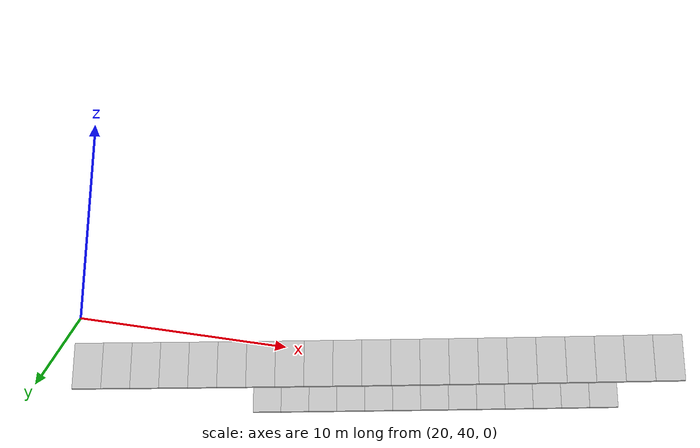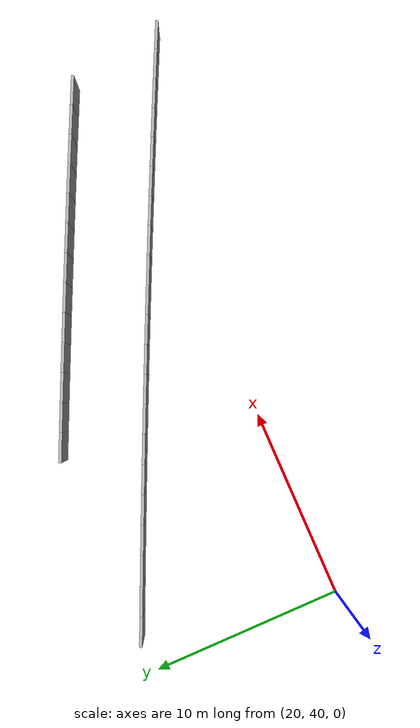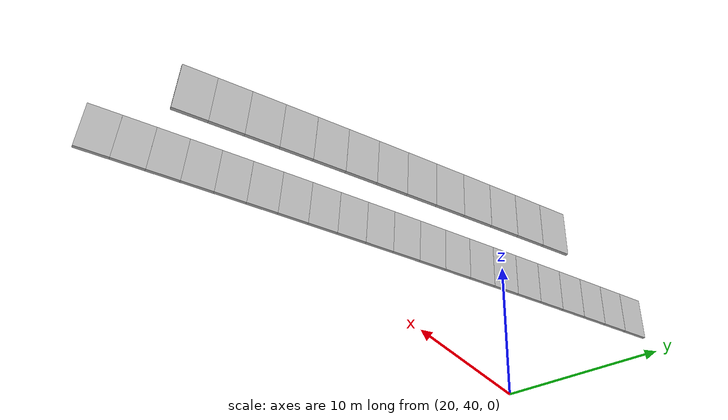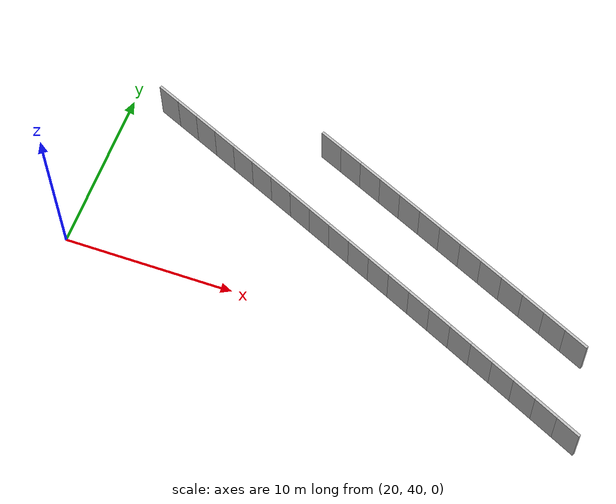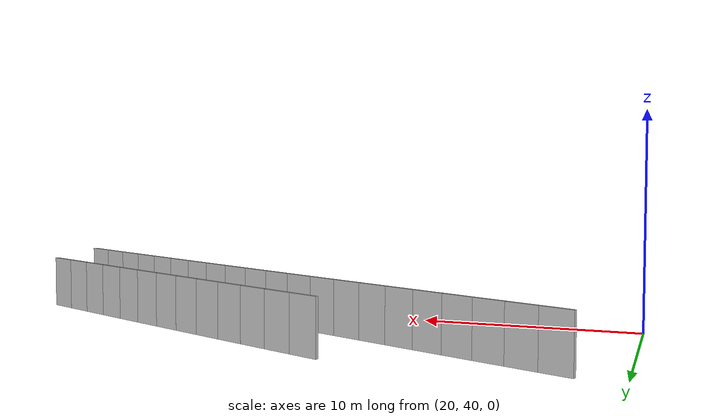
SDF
<?xml version="1.0" ?>
<sdf version="1.6">
  <model name="sps_3444">
    <pose frame="">0 0 0 0 -0 0</pose>
    <static>1</static>
    <self_collide>0</self_collide>
    <allow_auto_disable>0</allow_auto_disable>
    <link name="Wall10630">
      <kinematic>0</kinematic>
      <gravity>1</gravity>
      <self_collide>0</self_collide>
      <collision name="collision">
        <geometry>
          <box>
            <size>1.49646 0.15 2.5</size>
          </box>
        </geometry>
        <pose frame="">0 0 0 0 -0 0</pose>
      </collision>
      <visual name="visual">
        <geometry>
          <box>
            <size>1.49646 0.15 2.5</size>
          </box>
        </geometry>
        <pose frame="">0 0 0 0 -0 0</pose>
        <cast_shadows>1</cast_shadows>
        <transparency>0.0</transparency>
      </visual>
      <pose frame="">49.7427 37.1534 1.25 0 -0 2.6927</pose>
    </link>
    <link name="Wall10631">
      <kinematic>0</kinematic>
      <gravity>1</gravity>
      <self_collide>0</self_collide>
      <collision name="collision">
        <geometry>
          <box>
            <size>1.49647 0.15 2.5</size>
          </box>
        </geometry>
        <pose frame="">0 0 0 0 -0 0</pose>
      </collision>
      <visual name="visual">
        <geometry>
          <box>
            <size>1.49647 0.15 2.5</size>
          </box>
        </geometry>
        <pose frame="">0 0 0 0 -0 0</pose>
        <cast_shadows>1</cast_shadows>
        <transparency>0.0</transparency>
      </visual>
      <pose frame="">48.394 37.8018 1.25 0 -0 2.6942</pose>
    </link>
    <link name="Wall10632">
      <kinematic>0</kinematic>
      <gravity>1</gravity>
      <self_collide>0</self_collide>
      <collision name="collision">
        <geometry>
          <box>
            <size>1.4967 0.15 2.5</size>
          </box>
        </geometry>
        <pose frame="">0 0 0 0 -0 0</pose>
      </collision>
      <visual name="visual">
        <geometry>
          <box>
            <size>1.4967 0.15 2.5</size>
          </box>
        </geometry>
        <pose frame="">0 0 0 0 -0 0</pose>
        <cast_shadows>1</cast_shadows>
        <transparency>0.0</transparency>
      </visual>
      <pose frame="">47.0442 38.4482 1.25 0 -0 2.69576</pose>
    </link>
    <link name="Wall10633">
      <kinematic>0</kinematic>
      <gravity>1</gravity>
      <self_collide>0</self_collide>
      <collision name="collision">
        <geometry>
          <box>
            <size>1.49639 0.15 2.5</size>
          </box>
        </geometry>
        <pose frame="">0 0 0 0 -0 0</pose>
      </collision>
      <visual name="visual">
        <geometry>
          <box>
            <size>1.49639 0.15 2.5</size>
          </box>
        </geometry>
        <pose frame="">0 0 0 0 -0 0</pose>
        <cast_shadows>1</cast_shadows>
        <transparency>0.0</transparency>
      </visual>
      <pose frame="">45.6934 39.0924 1.25 0 -0 2.69743</pose>
    </link>
    <link name="Wall10634">
      <kinematic>0</kinematic>
      <gravity>1</gravity>
      <self_collide>0</self_collide>
      <collision name="collision">
        <geometry>
          <box>
            <size>1.49663 0.15 2.5</size>
          </box>
        </geometry>
        <pose frame="">0 0 0 0 -0 0</pose>
      </collision>
      <visual name="visual">
        <geometry>
          <box>
            <size>1.49663 0.15 2.5</size>
          </box>
        </geometry>
        <pose frame="">0 0 0 0 -0 0</pose>
        <cast_shadows>1</cast_shadows>
        <transparency>0.0</transparency>
      </visual>
      <pose frame="">44.3416 39.7344 1.25 0 -0 2.69899</pose>
    </link>
    <link name="Wall10635">
      <kinematic>0</kinematic>
      <gravity>1</gravity>
      <self_collide>0</self_collide>
      <collision name="collision">
        <geometry>
          <box>
            <size>1.49635 0.15 2.5</size>
          </box>
        </geometry>
        <pose frame="">0 0 0 0 -0 0</pose>
      </collision>
      <visual name="visual">
        <geometry>
          <box>
            <size>1.49635 0.15 2.5</size>
          </box>
        </geometry>
        <pose frame="">0 0 0 0 -0 0</pose>
        <cast_shadows>1</cast_shadows>
        <transparency>0.0</transparency>
      </visual>
      <pose frame="">42.9889 40.3743 1.25 0 -0 2.70053</pose>
    </link>
    <link name="Wall10636">
      <kinematic>0</kinematic>
      <gravity>1</gravity>
      <self_collide>0</self_collide>
      <collision name="collision">
        <geometry>
          <box>
            <size>1.49651 0.15 2.5</size>
          </box>
        </geometry>
        <pose frame="">0 0 0 0 -0 0</pose>
      </collision>
      <visual name="visual">
        <geometry>
          <box>
            <size>1.49651 0.15 2.5</size>
          </box>
        </geometry>
        <pose frame="">0 0 0 0 -0 0</pose>
        <cast_shadows>1</cast_shadows>
        <transparency>0.0</transparency>
      </visual>
      <pose frame="">41.6352 41.0121 1.25 0 -0 2.70202</pose>
    </link>
    <link name="Wall10637">
      <kinematic>0</kinematic>
      <gravity>1</gravity>
      <self_collide>0</self_collide>
      <collision name="collision">
        <geometry>
          <box>
            <size>1.49647 0.15 2.5</size>
          </box>
        </geometry>
        <pose frame="">0 0 0 0 -0 0</pose>
      </collision>
      <visual name="visual">
        <geometry>
          <box>
            <size>1.49647 0.15 2.5</size>
          </box>
        </geometry>
        <pose frame="">0 0 0 0 -0 0</pose>
        <cast_shadows>1</cast_shadows>
        <transparency>0.0</transparency>
      </visual>
      <pose frame="">40.2804 41.6477 1.25 0 -0 2.70381</pose>
    </link>
    <link name="Wall10638">
      <kinematic>0</kinematic>
      <gravity>1</gravity>
      <self_collide>0</self_collide>
      <collision name="collision">
        <geometry>
          <box>
            <size>1.49669 0.15 2.5</size>
          </box>
        </geometry>
        <pose frame="">0 0 0 0 -0 0</pose>
      </collision>
      <visual name="visual">
        <geometry>
          <box>
            <size>1.49669 0.15 2.5</size>
          </box>
        </geometry>
        <pose frame="">0 0 0 0 -0 0</pose>
        <cast_shadows>1</cast_shadows>
        <transparency>0.0</transparency>
      </visual>
      <pose frame="">38.9245 42.2812 1.25 0 -0 2.70523</pose>
    </link>
    <link name="Wall10639">
      <kinematic>0</kinematic>
      <gravity>1</gravity>
      <self_collide>0</self_collide>
      <collision name="collision">
        <geometry>
          <box>
            <size>1.49635 0.15 2.5</size>
          </box>
        </geometry>
        <pose frame="">0 0 0 0 -0 0</pose>
      </collision>
      <visual name="visual">
        <geometry>
          <box>
            <size>1.49635 0.15 2.5</size>
          </box>
        </geometry>
        <pose frame="">0 0 0 0 -0 0</pose>
        <cast_shadows>1</cast_shadows>
        <transparency>0.0</transparency>
      </visual>
      <pose frame="">37.5676 42.9126 1.25 0 -0 2.70688</pose>
    </link>
    <link name="Wall10640">
      <kinematic>0</kinematic>
      <gravity>1</gravity>
      <self_collide>0</self_collide>
      <collision name="collision">
        <geometry>
          <box>
            <size>1.49664 0.15 2.5</size>
          </box>
        </geometry>
        <pose frame="">0 0 0 0 -0 0</pose>
      </collision>
      <visual name="visual">
        <geometry>
          <box>
            <size>1.49664 0.15 2.5</size>
          </box>
        </geometry>
        <pose frame="">0 0 0 0 -0 0</pose>
        <cast_shadows>1</cast_shadows>
        <transparency>0.0</transparency>
      </visual>
      <pose frame="">36.2099 43.5418 1.25 0 -0 2.70841</pose>
    </link>
    <link name="Wall10641">
      <kinematic>0</kinematic>
      <gravity>1</gravity>
      <self_collide>0</self_collide>
      <collision name="collision">
        <geometry>
          <box>
            <size>1.49663 0.15 2.5</size>
          </box>
        </geometry>
        <pose frame="">0 0 0 0 -0 0</pose>
      </collision>
      <visual name="visual">
        <geometry>
          <box>
            <size>1.49663 0.15 2.5</size>
          </box>
        </geometry>
        <pose frame="">0 0 0 0 -0 0</pose>
        <cast_shadows>1</cast_shadows>
        <transparency>0.0</transparency>
      </visual>
      <pose frame="">34.8509 44.1689 1.25 0 -0 2.71007</pose>
    </link>
    <link name="Wall10642">
      <kinematic>0</kinematic>
      <gravity>1</gravity>
      <self_collide>0</self_collide>
      <collision name="collision">
        <geometry>
          <box>
            <size>1.49638 0.15 2.5</size>
          </box>
        </geometry>
        <pose frame="">0 0 0 0 -0 0</pose>
      </collision>
      <visual name="visual">
        <geometry>
          <box>
            <size>1.49638 0.15 2.5</size>
          </box>
        </geometry>
        <pose frame="">0 0 0 0 -0 0</pose>
        <cast_shadows>1</cast_shadows>
        <transparency>0.0</transparency>
      </visual>
      <pose frame="">33.4911 44.7938 1.25 0 -0 2.71161</pose>
    </link>
    <link name="Wall10643">
      <kinematic>0</kinematic>
      <gravity>1</gravity>
      <self_collide>0</self_collide>
      <collision name="collision">
        <geometry>
          <box>
            <size>1.4966 0.15 2.5</size>
          </box>
        </geometry>
        <pose frame="">0 0 0 0 -0 0</pose>
      </collision>
      <visual name="visual">
        <geometry>
          <box>
            <size>1.4966 0.15 2.5</size>
          </box>
        </geometry>
        <pose frame="">0 0 0 0 -0 0</pose>
        <cast_shadows>1</cast_shadows>
        <transparency>0.0</transparency>
      </visual>
      <pose frame="">32.1304 45.4165 1.25 0 -0 2.71324</pose>
    </link>
    <link name="Wall10644">
      <kinematic>0</kinematic>
      <gravity>1</gravity>
      <self_collide>0</self_collide>
      <collision name="collision">
        <geometry>
          <box>
            <size>1.49639 0.15 2.5</size>
          </box>
        </geometry>
        <pose frame="">0 0 0 0 -0 0</pose>
      </collision>
      <visual name="visual">
        <geometry>
          <box>
            <size>1.49639 0.15 2.5</size>
          </box>
        </geometry>
        <pose frame="">0 0 0 0 -0 0</pose>
        <cast_shadows>1</cast_shadows>
        <transparency>0.0</transparency>
      </visual>
      <pose frame="">30.7686 46.037 1.25 0 -0 2.71484</pose>
    </link>
    <link name="Wall10645">
      <kinematic>0</kinematic>
      <gravity>1</gravity>
      <self_collide>0</self_collide>
      <collision name="collision">
        <geometry>
          <box>
            <size>1.49643 0.15 2.5</size>
          </box>
        </geometry>
        <pose frame="">0 0 0 0 -0 0</pose>
      </collision>
      <visual name="visual">
        <geometry>
          <box>
            <size>1.49643 0.15 2.5</size>
          </box>
        </geometry>
        <pose frame="">0 0 0 0 -0 0</pose>
        <cast_shadows>1</cast_shadows>
        <transparency>0.0</transparency>
      </visual>
      <pose frame="">29.4059 46.6553 1.25 0 -0 2.71646</pose>
    </link>
    <link name="Wall10646">
      <kinematic>0</kinematic>
      <gravity>1</gravity>
      <self_collide>0</self_collide>
      <collision name="collision">
        <geometry>
          <box>
            <size>1.49651 0.15 2.5</size>
          </box>
        </geometry>
        <pose frame="">0 0 0 0 -0 0</pose>
      </collision>
      <visual name="visual">
        <geometry>
          <box>
            <size>1.49651 0.15 2.5</size>
          </box>
        </geometry>
        <pose frame="">0 0 0 0 -0 0</pose>
        <cast_shadows>1</cast_shadows>
        <transparency>0.0</transparency>
      </visual>
      <pose frame="">28.0422 47.2715 1.25 0 -0 2.71792</pose>
    </link>
    <link name="Wall10647">
      <kinematic>0</kinematic>
      <gravity>1</gravity>
      <self_collide>0</self_collide>
      <collision name="collision">
        <geometry>
          <box>
            <size>1.49653 0.15 2.5</size>
          </box>
        </geometry>
        <pose frame="">0 0 0 0 -0 0</pose>
      </collision>
      <visual name="visual">
        <geometry>
          <box>
            <size>1.49653 0.15 2.5</size>
          </box>
        </geometry>
        <pose frame="">0 0 0 0 -0 0</pose>
        <cast_shadows>1</cast_shadows>
        <transparency>0.0</transparency>
      </visual>
      <pose frame="">26.6775 47.8856 1.25 0 -0 2.71958</pose>
    </link>
    <link name="Wall10648">
      <kinematic>0</kinematic>
      <gravity>1</gravity>
      <self_collide>0</self_collide>
      <collision name="collision">
        <geometry>
          <box>
            <size>1.49647 0.15 2.5</size>
          </box>
        </geometry>
        <pose frame="">0 0 0 0 -0 0</pose>
      </collision>
      <visual name="visual">
        <geometry>
          <box>
            <size>1.49647 0.15 2.5</size>
          </box>
        </geometry>
        <pose frame="">0 0 0 0 -0 0</pose>
        <cast_shadows>1</cast_shadows>
        <transparency>0.0</transparency>
      </visual>
      <pose frame="">25.3118 48.4975 1.25 0 -0 2.72117</pose>
    </link>
    <link name="Wall10649">
      <kinematic>0</kinematic>
      <gravity>1</gravity>
      <self_collide>0</self_collide>
      <collision name="collision">
        <geometry>
          <box>
            <size>1.4966 0.15 2.5</size>
          </box>
        </geometry>
        <pose frame="">0 0 0 0 -0 0</pose>
      </collision>
      <visual name="visual">
        <geometry>
          <box>
            <size>1.4966 0.15 2.5</size>
          </box>
        </geometry>
        <pose frame="">0 0 0 0 -0 0</pose>
        <cast_shadows>1</cast_shadows>
        <transparency>0.0</transparency>
      </visual>
      <pose frame="">23.9451 49.1072 1.25 0 -0 2.72277</pose>
    </link>
    <link name="Wall10650">
      <kinematic>0</kinematic>
      <gravity>1</gravity>
      <self_collide>0</self_collide>
      <collision name="collision">
        <geometry>
          <box>
            <size>1.49643 0.15 2.5</size>
          </box>
        </geometry>
        <pose frame="">0 0 0 0 -0 0</pose>
      </collision>
      <visual name="visual">
        <geometry>
          <box>
            <size>1.49643 0.15 2.5</size>
          </box>
        </geometry>
        <pose frame="">0 0 0 0 -0 0</pose>
        <cast_shadows>1</cast_shadows>
        <transparency>0.0</transparency>
      </visual>
      <pose frame="">22.5774 49.7148 1.25 0 -0 2.72424</pose>
    </link>
    <link name="Wall11229">
      <kinematic>0</kinematic>
      <gravity>1</gravity>
      <self_collide>0</self_collide>
      <collision name="collision">
        <geometry>
          <box>
            <size>1.50328 0.15 2.5</size>
          </box>
        </geometry>
        <pose frame="">0 0 0 0 -0 0</pose>
      </collision>
      <visual name="visual">
        <geometry>
          <box>
            <size>1.50328 0.15 2.5</size>
          </box>
        </geometry>
        <pose frame="">0 0 0 0 -0 0</pose>
        <cast_shadows>1</cast_shadows>
        <transparency>0.0</transparency>
      </visual>
      <pose frame="">48.8291 42.1839 1.25 0 -0 2.69592</pose>
    </link>
    <link name="Wall11230">
      <kinematic>0</kinematic>
      <gravity>1</gravity>
      <self_collide>0</self_collide>
      <collision name="collision">
        <geometry>
          <box>
            <size>1.50308 0.15 2.5</size>
          </box>
        </geometry>
        <pose frame="">0 0 0 0 -0 0</pose>
      </collision>
      <visual name="visual">
        <geometry>
          <box>
            <size>1.50308 0.15 2.5</size>
          </box>
        </geometry>
        <pose frame="">0 0 0 0 -0 0</pose>
        <cast_shadows>1</cast_shadows>
        <transparency>0.0</transparency>
      </visual>
      <pose frame="">47.4723 42.8309 1.25 0 -0 2.69734</pose>
    </link>
    <link name="Wall11231">
      <kinematic>0</kinematic>
      <gravity>1</gravity>
      <self_collide>0</self_collide>
      <collision name="collision">
        <geometry>
          <box>
            <size>1.50307 0.15 2.5</size>
          </box>
        </geometry>
        <pose frame="">0 0 0 0 -0 0</pose>
      </collision>
      <visual name="visual">
        <geometry>
          <box>
            <size>1.50307 0.15 2.5</size>
          </box>
        </geometry>
        <pose frame="">0 0 0 0 -0 0</pose>
        <cast_shadows>1</cast_shadows>
        <transparency>0.0</transparency>
      </visual>
      <pose frame="">46.1146 43.4758 1.25 0 -0 2.69896</pose>
    </link>
    <link name="Wall11232">
      <kinematic>0</kinematic>
      <gravity>1</gravity>
      <self_collide>0</self_collide>
      <collision name="collision">
        <geometry>
          <box>
            <size>1.50302 0.15 2.5</size>
          </box>
        </geometry>
        <pose frame="">0 0 0 0 -0 0</pose>
      </collision>
      <visual name="visual">
        <geometry>
          <box>
            <size>1.50302 0.15 2.5</size>
          </box>
        </geometry>
        <pose frame="">0 0 0 0 -0 0</pose>
        <cast_shadows>1</cast_shadows>
        <transparency>0.0</transparency>
      </visual>
      <pose frame="">44.7559 44.1185 1.25 0 -0 2.70056</pose>
    </link>
    <link name="Wall11233">
      <kinematic>0</kinematic>
      <gravity>1</gravity>
      <self_collide>0</self_collide>
      <collision name="collision">
        <geometry>
          <box>
            <size>1.50302 0.15 2.5</size>
          </box>
        </geometry>
        <pose frame="">0 0 0 0 -0 0</pose>
      </collision>
      <visual name="visual">
        <geometry>
          <box>
            <size>1.50302 0.15 2.5</size>
          </box>
        </geometry>
        <pose frame="">0 0 0 0 -0 0</pose>
        <cast_shadows>1</cast_shadows>
        <transparency>0.0</transparency>
      </visual>
      <pose frame="">43.3961 44.759 1.25 0 -0 2.70217</pose>
    </link>
    <link name="Wall11234">
      <kinematic>0</kinematic>
      <gravity>1</gravity>
      <self_collide>0</self_collide>
      <collision name="collision">
        <geometry>
          <box>
            <size>1.50313 0.15 2.5</size>
          </box>
        </geometry>
        <pose frame="">0 0 0 0 -0 0</pose>
      </collision>
      <visual name="visual">
        <geometry>
          <box>
            <size>1.50313 0.15 2.5</size>
          </box>
        </geometry>
        <pose frame="">0 0 0 0 -0 0</pose>
        <cast_shadows>1</cast_shadows>
        <transparency>0.0</transparency>
      </visual>
      <pose frame="">42.0353 45.3973 1.25 0 -0 2.70382</pose>
    </link>
    <link name="Wall11235">
      <kinematic>0</kinematic>
      <gravity>1</gravity>
      <self_collide>0</self_collide>
      <collision name="collision">
        <geometry>
          <box>
            <size>1.50308 0.15 2.5</size>
          </box>
        </geometry>
        <pose frame="">0 0 0 0 -0 0</pose>
      </collision>
      <visual name="visual">
        <geometry>
          <box>
            <size>1.50308 0.15 2.5</size>
          </box>
        </geometry>
        <pose frame="">0 0 0 0 -0 0</pose>
        <cast_shadows>1</cast_shadows>
        <transparency>0.0</transparency>
      </visual>
      <pose frame="">40.6735 46.0336 1.25 0 -0 2.70515</pose>
    </link>
    <link name="Wall11236">
      <kinematic>0</kinematic>
      <gravity>1</gravity>
      <self_collide>0</self_collide>
      <collision name="collision">
        <geometry>
          <box>
            <size>1.50301 0.15 2.5</size>
          </box>
        </geometry>
        <pose frame="">0 0 0 0 -0 0</pose>
      </collision>
      <visual name="visual">
        <geometry>
          <box>
            <size>1.50301 0.15 2.5</size>
          </box>
        </geometry>
        <pose frame="">0 0 0 0 -0 0</pose>
        <cast_shadows>1</cast_shadows>
        <transparency>0.0</transparency>
      </visual>
      <pose frame="">39.3108 46.6678 1.25 0 -0 2.70688</pose>
    </link>
    <link name="Wall11237">
      <kinematic>0</kinematic>
      <gravity>1</gravity>
      <self_collide>0</self_collide>
      <collision name="collision">
        <geometry>
          <box>
            <size>1.50314 0.15 2.5</size>
          </box>
        </geometry>
        <pose frame="">0 0 0 0 -0 0</pose>
      </collision>
      <visual name="visual">
        <geometry>
          <box>
            <size>1.50314 0.15 2.5</size>
          </box>
        </geometry>
        <pose frame="">0 0 0 0 -0 0</pose>
        <cast_shadows>1</cast_shadows>
        <transparency>0.0</transparency>
      </visual>
      <pose frame="">37.947 47.2997 1.25 0 -0 2.70853</pose>
    </link>
    <link name="Wall11238">
      <kinematic>0</kinematic>
      <gravity>1</gravity>
      <self_collide>0</self_collide>
      <collision name="collision">
        <geometry>
          <box>
            <size>1.50294 0.15 2.5</size>
          </box>
        </geometry>
        <pose frame="">0 0 0 0 -0 0</pose>
      </collision>
      <visual name="visual">
        <geometry>
          <box>
            <size>1.50294 0.15 2.5</size>
          </box>
        </geometry>
        <pose frame="">0 0 0 0 -0 0</pose>
        <cast_shadows>1</cast_shadows>
        <transparency>0.0</transparency>
      </visual>
      <pose frame="">36.5823 47.9294 1.25 0 -0 2.71008</pose>
    </link>
    <link name="Wall11239">
      <kinematic>0</kinematic>
      <gravity>1</gravity>
      <self_collide>0</self_collide>
      <collision name="collision">
        <geometry>
          <box>
            <size>1.50307 0.15 2.5</size>
          </box>
        </geometry>
        <pose frame="">0 0 0 0 -0 0</pose>
      </collision>
      <visual name="visual">
        <geometry>
          <box>
            <size>1.50307 0.15 2.5</size>
          </box>
        </geometry>
        <pose frame="">0 0 0 0 -0 0</pose>
        <cast_shadows>1</cast_shadows>
        <transparency>0.0</transparency>
      </visual>
      <pose frame="">35.2166 48.557 1.25 0 -0 2.71155</pose>
    </link>
    <link name="Wall11240">
      <kinematic>0</kinematic>
      <gravity>1</gravity>
      <self_collide>0</self_collide>
      <collision name="collision">
        <geometry>
          <box>
            <size>1.50294 0.15 2.5</size>
          </box>
        </geometry>
        <pose frame="">0 0 0 0 -0 0</pose>
      </collision>
      <visual name="visual">
        <geometry>
          <box>
            <size>1.50294 0.15 2.5</size>
          </box>
        </geometry>
        <pose frame="">0 0 0 0 -0 0</pose>
        <cast_shadows>1</cast_shadows>
        <transparency>0.0</transparency>
      </visual>
      <pose frame="">33.8499 49.1824 1.25 0 -0 2.71329</pose>
    </link>
    <link name="Wall11241">
      <kinematic>0</kinematic>
      <gravity>1</gravity>
      <self_collide>0</self_collide>
      <collision name="collision">
        <geometry>
          <box>
            <size>1.50329 0.15 2.5</size>
          </box>
        </geometry>
        <pose frame="">0 0 0 0 -0 0</pose>
      </collision>
      <visual name="visual">
        <geometry>
          <box>
            <size>1.50329 0.15 2.5</size>
          </box>
        </geometry>
        <pose frame="">0 0 0 0 -0 0</pose>
        <cast_shadows>1</cast_shadows>
        <transparency>0.0</transparency>
      </visual>
      <pose frame="">32.4821 49.8057 1.25 0 -0 2.71474</pose>
    </link>
  </model>
</sdf>
